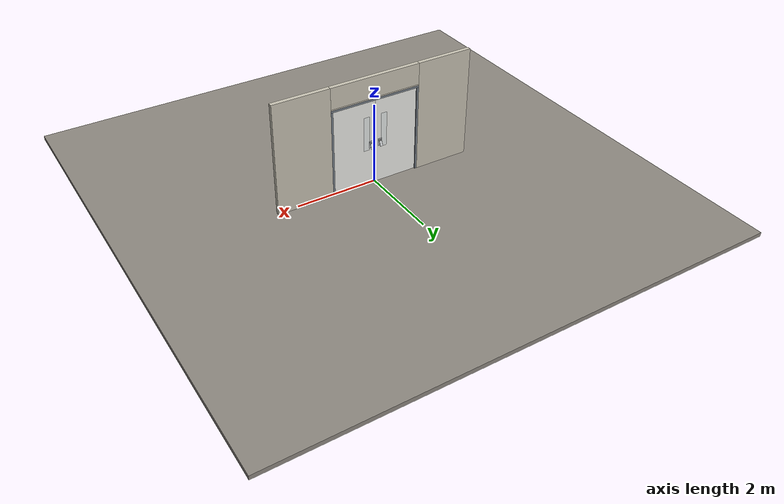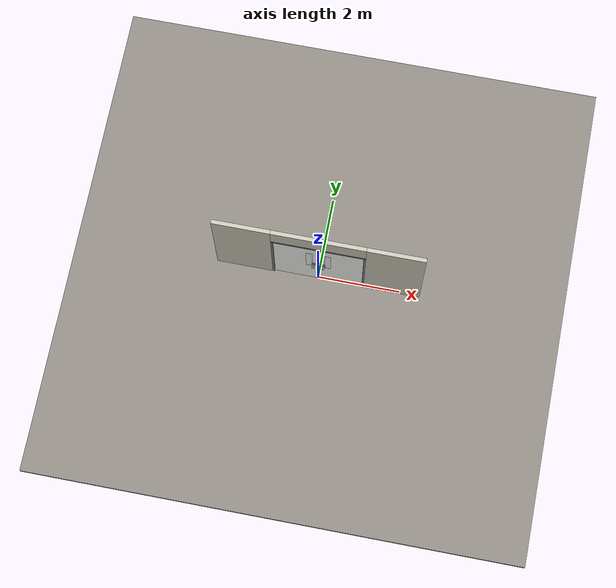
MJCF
<?xml version="1.0" ?>
<mujoco model="db0158_swing_double_minimal">
  <compiler angle="radian" meshdir="../../hardware" texturedir="../../textures" autolimits="true" inertiafromgeom="false"/>
  <option timestep="0.002" integrator="implicitfast" cone="elliptic" impratio="10" noslip_iterations="3">
    <flag multiccd="enable"/>
  </option>
  <size memory="16M"/>
  <default>
    <geom condim="4" solref="0.005 1" solimp="0.95 0.99 0.001"/>
    <joint solreflimit="0.005 1" solimplimit="0.95 0.99 0.001"/>
    <tendon solreflimit="0.005 1"/>
    <equality solref="0.002 1"/>
  </default>
  <visual>
    <headlight ambient="0.4 0.4 0.4" diffuse="0.7 0.7 0.7" specular="0.2 0.2 0.2"/>
    <quality shadowsize="4096"/>
    <map znear="0.01" zfar="60"/>
  </visual>
  <asset>
    <material name="mat_floor" rgba="0.55 0.53 0.5 1" specular="0.2" shininess="0.15" reflectance="0"/>
    <material name="mat_wall" rgba="0.78 0.76 0.7 1" specular="0.2" shininess="0.1" reflectance="0"/>
    <material name="mat_leaf_a" rgba="0.93 0.93 0.91 1" specular="0.2" shininess="0.48" reflectance="0"/>
    <material name="mat_glass" rgba="0.85 0.92 0.95 0.25" specular="0.2" shininess="0.95" reflectance="0.1"/>
    <material name="mat_hinge" rgba="0.65 0.66 0.68 1" specular="0.74" shininess="0.5" reflectance="0.36"/>
    <material name="mat_op_stainless" rgba="0.75 0.76 0.77 1" specular="0.8" shininess="0.65" reflectance="0.4"/>
    <material name="mat_maglock" rgba="0.22 0.17 0.13 1" specular="0.8" shininess="0.6" reflectance="0.4"/>
    <material name="mat_closer" rgba="0.22 0.17 0.13 1" specular="0.8" shininess="0.6" reflectance="0.4"/>
    <material name="mat_kick" rgba="0.75 0.76 0.77 1" specular="0.8" shininess="0.65" reflectance="0.4"/>
    <material name="mat_bumper" rgba="0.92 0.92 0.9 1" specular="0.2" shininess="0.6" reflectance="0"/>
    <material name="mat_leaf_b" rgba="0.93 0.93 0.91 1" specular="0.2" shininess="0.48" reflectance="0"/>
    <material name="mat_frame" rgba="0.45 0.48 0.52 1" specular="0.32" shininess="0.6" reflectance="0.08"/>
    <texture name="skybox" type="skybox" builtin="gradient" rgb1="0.6 0.7 0.85" rgb2="0.9 0.92 0.95" width="256" height="256"/>
  </asset>
  <worldbody>
    <light name="sun" pos="1.5 -2.5 4" dir="-0.3 0.5 -0.8" directional="true" diffuse="0.8 0.8 0.8" specular="0.3 0.3 0.3" castshadow="true"/>
    <light name="fill" pos="-1.5 2.5 3" dir="0.3 -0.5 -0.7" directional="true" diffuse="0.35 0.35 0.4" castshadow="false"/>
    <camera name="robot_view" pos="0 -2.637812 1.812087" xyaxes="1 0 0 0 0.26963 0.962964" fovy="52"/>
    <camera name="far_view" pos="0 2.637812 1.812087" xyaxes="-1 0 0 0 -0.26963 0.962964" fovy="52"/>
    <camera name="iso" pos="-2.004737 -2.215762 2.234138" xyaxes="0.741536 -0.670913 0 0.242917 0.268487 0.932151" fovy="46"/>
    <camera name="detail_handle" pos="0.0615 -0.730479 1.293663" xyaxes="0.97561 0.219512 0 -0.070934 0.315262 0.94635" fovy="38"/>
    <geom name="floor" type="box" size="6 6 0.05" pos="0 0 -0.05" material="mat_floor" group="0" contype="1" conaffinity="1" friction="0.8 0.005 0.0001" density="2400"/>
    <geom name="wall_left" type="box" size="0.68925 0.05 1.3735" pos="-1.81075 0 1.3735" material="mat_wall" group="0" contype="1" conaffinity="1" friction="0.6 0.005 0.0001" density="800"/>
    <geom name="wall_right" type="box" size="0.68925 0.05 1.3735" pos="1.81075 0 1.3735" material="mat_wall" group="0" contype="1" conaffinity="1" friction="0.6 0.005 0.0001" density="800"/>
    <geom name="wall_header" type="box" size="1.1215 0.05 0.26" pos="0 0 2.487" material="mat_wall" group="0" contype="1" conaffinity="1" friction="0.6 0.005 0.0001" density="800"/>
    <geom name="jamb_l" type="box" size="0.025 0.05 1.0735" pos="-1.0965 0 1.0735" material="mat_frame" group="0" contype="1" conaffinity="1" friction="0.6 0.005 0.0001" density="300"/>
    <geom name="jamb_r" type="box" size="0.025 0.05 1.0735" pos="1.0965 0 1.0735" material="mat_frame" group="0" contype="1" conaffinity="1" friction="0.6 0.005 0.0001" density="300"/>
    <geom name="jamb_head" type="box" size="1.1215 0.05 0.025" pos="0 0 2.172" material="mat_frame" group="0" contype="1" conaffinity="1" friction="0.6 0.005 0.0001" density="300"/>
    <geom name="head_stud" type="box" size="1.1215 0.05 0.015" pos="0 0 2.212" material="mat_wall" group="0" contype="1" conaffinity="1" friction="0.6 0.005 0.0001" density="500"/>
    <site name="approach_point" pos="0 -1.5 0" quat="1 0 0 0" size="0.05" rgba="0.2 0.9 0.2 0.5" group="4"/>
    <site name="goal_point" pos="0 1.5 0" quat="1 0 0 0" size="0.05" rgba="0.2 0.9 0.2 0.5" group="4"/>
    <site name="door_plane_center" pos="0 0 1.0735" quat="1 0 0 0" size="0.02" rgba="0.2 0.9 0.2 0.5" group="4"/>
    <site name="approach_point_2" pos="0 -1.5 0" quat="1 0 0 0" size="0.05" rgba="0.2 0.9 0.2 0.5" group="4"/>
    <site name="goal_point_2" pos="0 1.5 0" quat="1 0 0 0" size="0.05" rgba="0.2 0.9 0.2 0.5" group="4"/>
    <site name="door_plane_center_2" pos="0 0 1.0735" quat="1 0 0 0" size="0.02" rgba="0.2 0.9 0.2 0.5" group="4"/>
    <site name="approach_point_3" pos="0 -1.5 0" quat="1 0 0 0" size="0.05" rgba="0.2 0.9 0.2 0.5" group="4"/>
    <site name="goal_point_3" pos="0 1.5 0" quat="1 0 0 0" size="0.05" rgba="0.2 0.9 0.2 0.5" group="4"/>
    <site name="door_plane_center_3" pos="0 0 1.0735" quat="1 0 0 0" size="0.02" rgba="0.2 0.9 0.2 0.5" group="4"/>
    <body name="leaf_a" pos="-1.0715 0 0">
      <inertial pos="0.540377 0 1.075732" mass="81.046819" quat="0.4999 0.4999 -0.5001 0.5001" diaginertia="7.760979907 30.487194414 38.221142337"/>
      <joint name="leaf_a_hinge" type="hinge" axis="0 0 1" pos="0.003 0.029 0" limited="true" range="0 1.570796" solreflimit="0.02 1" damping="15.49954" frictionloss="2.525879" stiffness="17.118706" springref="-2.550426" armature="0.02"/>
      <geom name="leaf_a_slab" type="box" size="0.5335 0.022 1.067" pos="0.5365 0 1.076" material="mat_leaf_a" group="0" contype="1" conaffinity="1" friction="0.35 0.005 0.0001" density="1"/>
      <geom name="leaf_a_glass_0" type="box" size="0.075 0.0228 0.4268" pos="0.84763 0 1.33208" material="mat_glass" group="1" contype="0" conaffinity="0" density="1"/>
      <geom name="leaf_a_handle_paddle_backplate_n" type="box" size="0.044 0.003 0.09" pos="0.953 -0.025 1.035895" material="mat_op_stainless" group="0" contype="1" conaffinity="1" friction="0.6 0.005 0.0001" density="3000"/>
      <geom name="leaf_a_handle_paddle_bearing_n_-1" type="box" size="0.005 0.006 0.009" pos="0.915 -0.034 1.098895" material="mat_op_stainless" group="0" contype="1" conaffinity="1" friction="0.6 0.005 0.0001" density="3000"/>
      <geom name="leaf_a_handle_paddle_bearing_n_1" type="box" size="0.005 0.006 0.009" pos="0.991 -0.034 1.098895" material="mat_op_stainless" group="0" contype="1" conaffinity="1" friction="0.6 0.005 0.0001" density="3000"/>
      <geom name="leaf_a_handle_paddle_pin_n" type="cylinder" size="0.004 0.043" pos="0.953 -0.04 1.098895" quat="0.707107 0 0.707107 0" material="mat_op_stainless" group="1" contype="0" conaffinity="0" density="7850"/>
      <geom name="leaf_a_handle_paddle_backplate_p" type="box" size="0.044 0.003 0.09" pos="0.953 0.025 1.035895" material="mat_op_stainless" group="0" contype="1" conaffinity="1" friction="0.6 0.005 0.0001" density="3000"/>
      <geom name="leaf_a_handle_paddle_bearing_p_-1" type="box" size="0.005 0.006 0.009" pos="0.915 0.034 1.098895" material="mat_op_stainless" group="0" contype="1" conaffinity="1" friction="0.6 0.005 0.0001" density="3000"/>
      <geom name="leaf_a_handle_paddle_bearing_p_1" type="box" size="0.005 0.006 0.009" pos="0.991 0.034 1.098895" material="mat_op_stainless" group="0" contype="1" conaffinity="1" friction="0.6 0.005 0.0001" density="3000"/>
      <geom name="leaf_a_handle_paddle_pin_p" type="cylinder" size="0.004 0.043" pos="0.953 0.04 1.098895" quat="0.707107 0 0.707107 0" material="mat_op_stainless" group="1" contype="0" conaffinity="0" density="7850"/>
      <site name="leaf_a_edge_mid" pos="1.07 0 1.067" quat="1 0 0 0" size="0.02" rgba="0.2 0.9 0.2 0.5" group="4"/>
      <body name="leaf_a_handle" pos="0.953 -0.04 1.098895">
        <inertial pos="0 -0.031074 -0.073496" mass="0.333798" quat="-0.390699 0.589368 0.589368 0.390699" diaginertia="0.00010582 0.00062862 0.000726597"/>
        <joint name="leaf_a_handle_hinge" type="hinge" axis="1 0 0" limited="true" range="0 0.4" damping="0.27663" frictionloss="0.056" stiffness="1.5" springref="-1" armature="0.01"/>
        <geom name="leaf_a_handle_paddle_col_n" type="box" size="0.032 0.006 0.063" pos="0 -0.035048 -0.082895" quat="0.980067 -0.198669 0 0" material="mat_op_stainless" group="0" contype="1" conaffinity="1" friction="0.6 0.005 0.0001" density="3000"/>
        <geom name="leaf_a_handle_paddle_neck_n" type="box" size="0.012 0.004 0.021" pos="0 -0.008178 -0.019342" quat="0.980067 -0.198669 0 0" material="mat_op_stainless" group="0" contype="1" conaffinity="1" friction="0.6 0.005 0.0001" density="3000"/>
        <geom name="leaf_a_handle_paddle_hub_n" type="cylinder" size="0.008 0.016" pos="0 0 0" quat="0.707107 0 0.707107 0" material="mat_op_stainless" group="1" contype="0" conaffinity="0" density="3000"/>
        <site name="leaf_a_handle_grip_n" pos="0 -0.040574 -0.080559" quat="0.833492 0.552531 0 0" size="0.012" rgba="0.2 0.9 0.2 0.5" group="4"/>
      </body>
      <body name="leaf_a_handle_paddle_follower_p" pos="0.953 0.04 1.098895">
        <inertial pos="0 0.031074 -0.073496" mass="0.333798" quat="0.589368 -0.390699 -0.390699 -0.589368" diaginertia="0.00010582 0.00062862 0.000726597"/>
        <joint name="leaf_a_handle_paddle_follower_p_hinge" type="hinge" axis="1 0 0" limited="true" range="0 0.4" armature="0.002"/>
        <geom name="leaf_a_handle_paddle_col_p" type="box" size="0.032 0.006 0.063" pos="0 0.035048 -0.082895" quat="0.980067 0.198669 0 0" material="mat_op_stainless" group="0" contype="1" conaffinity="1" friction="0.6 0.005 0.0001" density="3000"/>
        <geom name="leaf_a_handle_paddle_neck_p" type="box" size="0.012 0.004 0.021" pos="0 0.008178 -0.019342" quat="0.980067 0.198669 0 0" material="mat_op_stainless" group="0" contype="1" conaffinity="1" friction="0.6 0.005 0.0001" density="3000"/>
        <geom name="leaf_a_handle_paddle_hub_p" type="cylinder" size="0.008 0.016" pos="0 0 0" quat="0.707107 0 0.707107 0" material="mat_op_stainless" group="1" contype="0" conaffinity="0" density="3000"/>
        <site name="leaf_a_handle_grip_p" pos="0 0.029521 -0.085232" quat="0.552531 0.833492 0 0" size="0.012" rgba="0.2 0.9 0.2 0.5" group="4"/>
      </body>
    </body>
    <body name="leaf_b" pos="1.0715 0 0">
      <inertial pos="-0.540377 0 1.075732" mass="80.993885" quat="0.4999 -0.4999 0.5001 0.5001" diaginertia="7.755911027 30.467282505 38.196179204"/>
      <joint name="leaf_b_hinge" type="hinge" axis="0 0 1" pos="-0.003 -0.029 0" limited="true" range="0 1.570796" solreflimit="0.02 1" damping="15.49954" frictionloss="2.525879" stiffness="17.118706" springref="-2.550426" armature="0.02"/>
      <geom name="leaf_b_slab" type="box" size="0.5335 0.022 1.067" pos="-0.5365 0 1.076" material="mat_leaf_b" group="0" contype="1" conaffinity="1" friction="0.35 0.005 0.0001" density="1"/>
      <geom name="leaf_b_glass_0" type="box" size="0.075 0.0228 0.4268" pos="-0.84763 0 1.33208" material="mat_glass" group="1" contype="0" conaffinity="0" density="1"/>
      <geom name="leaf_b_handle_paddle_backplate_n" type="box" size="0.044 0.003 0.09" pos="-0.953 -0.025 1.035895" material="mat_op_stainless" group="0" contype="1" conaffinity="1" friction="0.6 0.005 0.0001" density="3000"/>
      <geom name="leaf_b_handle_paddle_bearing_n_-1" type="box" size="0.005 0.006 0.009" pos="-0.991 -0.034 1.098895" material="mat_op_stainless" group="0" contype="1" conaffinity="1" friction="0.6 0.005 0.0001" density="3000"/>
      <geom name="leaf_b_handle_paddle_bearing_n_1" type="box" size="0.005 0.006 0.009" pos="-0.915 -0.034 1.098895" material="mat_op_stainless" group="0" contype="1" conaffinity="1" friction="0.6 0.005 0.0001" density="3000"/>
      <geom name="leaf_b_handle_paddle_pin_n" type="cylinder" size="0.004 0.043" pos="-0.953 -0.04 1.098895" quat="0.707107 0 0.707107 0" material="mat_op_stainless" group="1" contype="0" conaffinity="0" density="7850"/>
      <geom name="leaf_b_handle_paddle_backplate_p" type="box" size="0.044 0.003 0.09" pos="-0.953 0.025 1.035895" material="mat_op_stainless" group="0" contype="1" conaffinity="1" friction="0.6 0.005 0.0001" density="3000"/>
      <geom name="leaf_b_handle_paddle_bearing_p_-1" type="box" size="0.005 0.006 0.009" pos="-0.991 0.034 1.098895" material="mat_op_stainless" group="0" contype="1" conaffinity="1" friction="0.6 0.005 0.0001" density="3000"/>
      <geom name="leaf_b_handle_paddle_bearing_p_1" type="box" size="0.005 0.006 0.009" pos="-0.915 0.034 1.098895" material="mat_op_stainless" group="0" contype="1" conaffinity="1" friction="0.6 0.005 0.0001" density="3000"/>
      <geom name="leaf_b_handle_paddle_pin_p" type="cylinder" size="0.004 0.043" pos="-0.953 0.04 1.098895" quat="0.707107 0 0.707107 0" material="mat_op_stainless" group="1" contype="0" conaffinity="0" density="7850"/>
      <site name="leaf_b_edge_mid" pos="-1.07 0 1.067" quat="1 0 0 0" size="0.02" rgba="0.2 0.9 0.2 0.5" group="4"/>
      <body name="leaf_b_handle" pos="-0.953 -0.04 1.098895">
        <inertial pos="0 -0.031074 -0.073496" mass="0.333798" quat="-0.390699 0.589368 0.589368 0.390699" diaginertia="0.00010582 0.00062862 0.000726597"/>
        <joint name="leaf_b_handle_hinge" type="hinge" axis="-1 0 0" limited="true" range="0 0.4" damping="0.27663" frictionloss="0.056" stiffness="1.5" springref="-1" armature="0.01"/>
        <geom name="leaf_b_handle_paddle_col_n" type="box" size="0.032 0.006 0.063" pos="0 -0.035048 -0.082895" quat="0.980067 -0.198669 0 0" material="mat_op_stainless" group="0" contype="1" conaffinity="1" friction="0.6 0.005 0.0001" density="3000"/>
        <geom name="leaf_b_handle_paddle_neck_n" type="box" size="0.012 0.004 0.021" pos="0 -0.008178 -0.019342" quat="0.980067 -0.198669 0 0" material="mat_op_stainless" group="0" contype="1" conaffinity="1" friction="0.6 0.005 0.0001" density="3000"/>
        <geom name="leaf_b_handle_paddle_hub_n" type="cylinder" size="0.008 0.016" pos="0 0 0" quat="0.707107 0 0.707107 0" material="mat_op_stainless" group="1" contype="0" conaffinity="0" density="3000"/>
        <site name="leaf_b_handle_grip_n" pos="0 -0.029521 -0.085232" quat="0.552531 -0.833492 0 0" size="0.012" rgba="0.2 0.9 0.2 0.5" group="4"/>
      </body>
      <body name="leaf_b_handle_paddle_follower_p" pos="-0.953 0.04 1.098895">
        <inertial pos="0 0.031074 -0.073496" mass="0.333798" quat="0.589368 -0.390699 -0.390699 -0.589368" diaginertia="0.00010582 0.00062862 0.000726597"/>
        <joint name="leaf_b_handle_paddle_follower_p_hinge" type="hinge" axis="-1 0 0" limited="true" range="0 0.4" armature="0.002"/>
        <geom name="leaf_b_handle_paddle_col_p" type="box" size="0.032 0.006 0.063" pos="0 0.035048 -0.082895" quat="0.980067 0.198669 0 0" material="mat_op_stainless" group="0" contype="1" conaffinity="1" friction="0.6 0.005 0.0001" density="3000"/>
        <geom name="leaf_b_handle_paddle_neck_p" type="box" size="0.012 0.004 0.021" pos="0 0.008178 -0.019342" quat="0.980067 0.198669 0 0" material="mat_op_stainless" group="0" contype="1" conaffinity="1" friction="0.6 0.005 0.0001" density="3000"/>
        <geom name="leaf_b_handle_paddle_hub_p" type="cylinder" size="0.008 0.016" pos="0 0 0" quat="0.707107 0 0.707107 0" material="mat_op_stainless" group="1" contype="0" conaffinity="0" density="3000"/>
        <site name="leaf_b_handle_grip_p" pos="0 0.040574 -0.080559" quat="0.833492 -0.552531 0 0" size="0.012" rgba="0.2 0.9 0.2 0.5" group="4"/>
      </body>
    </body>
  </worldbody>
  <equality>
    <joint name="leaf_a_handle_paddle_cam_p" joint1="leaf_a_handle_paddle_follower_p_hinge" joint2="leaf_a_handle_hinge" polycoef="0 1 0 0 0" active="true"/>
    <weld name="leaf_a_maglock" body1="leaf_a" body2="world" active="true"/>
    <joint name="leaf_b_handle_paddle_cam_p" joint1="leaf_b_handle_paddle_follower_p_hinge" joint2="leaf_b_handle_hinge" polycoef="0 1 0 0 0" active="true"/>
  </equality>
  <sensor>
    <jointpos name="leaf_a_hinge_pos" joint="leaf_a_hinge"/>
    <jointvel name="leaf_a_hinge_vel" joint="leaf_a_hinge"/>
    <jointpos name="leaf_a_handle_hinge_pos" joint="leaf_a_handle_hinge"/>
    <jointvel name="leaf_a_handle_hinge_vel" joint="leaf_a_handle_hinge"/>
    <jointpos name="leaf_b_hinge_pos" joint="leaf_b_hinge"/>
    <jointvel name="leaf_b_hinge_vel" joint="leaf_b_hinge"/>
    <jointpos name="leaf_b_handle_hinge_pos" joint="leaf_b_handle_hinge"/>
    <jointvel name="leaf_b_handle_hinge_vel" joint="leaf_b_handle_hinge"/>
  </sensor>
</mujoco>
